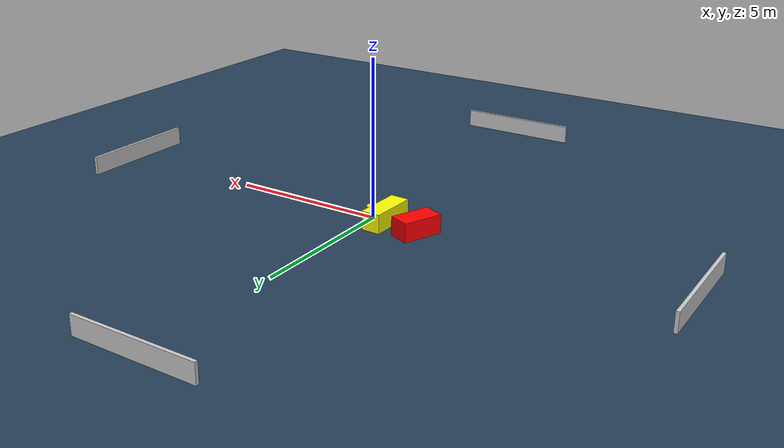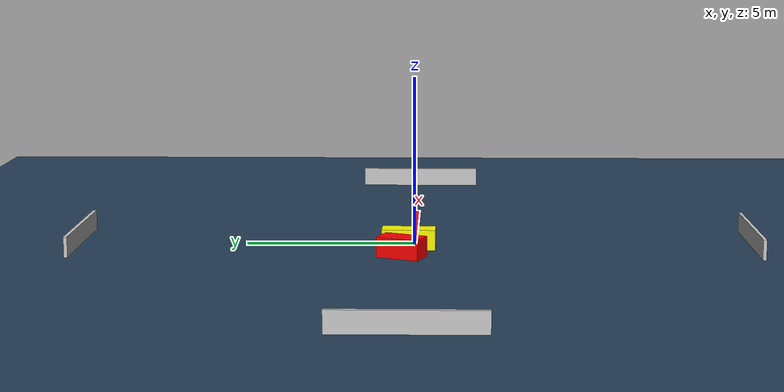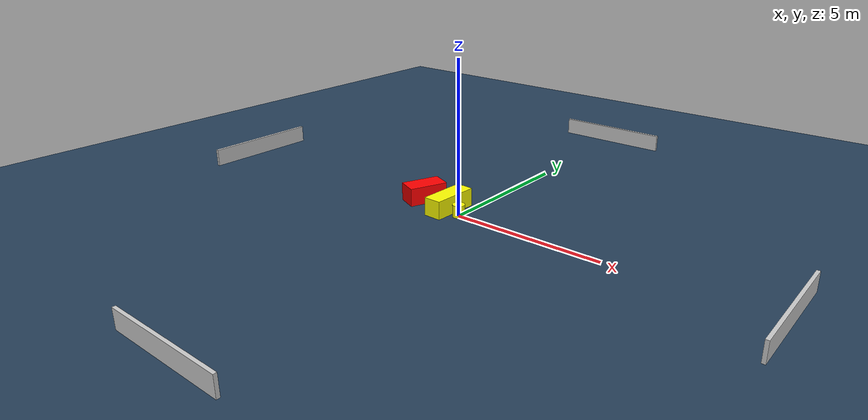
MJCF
<?xml version="1.0" ?>
<mujoco model="generated_environment">
  <option timestep="0.01" integrator="RK4" cone="elliptic"/>
  <default>
    <geom density="1"/>
  </default>
  <asset>
    <texture builtin="gradient" height="3072" name="skybox" rgb1="0.3 0.5 0.7" rgb2="0 0 0" type="skybox" width="512"/>
    <texture builtin="checker" height="300" name="groundplane" rgb1="0.2 0.3 0.4" rgb2="0.1 0.2 0.3" type="2d" width="300"/>
    <material name="groundplane" reflectance="0.2" texrepeat="5 5" texture="groundplane"/>
  </asset>
  <worldbody>
    <light dir="0 0 -1" directional="true" pos="0 0 1.5"/>
    <geom condim="3" friction="0.5 0.005 0.001" material="groundplane" name="floor" pos="0 0 0" size="0 0 0.05" type="plane"/>
    <body name="walls">
      <geom name="wall_1" condim="4" pos="-10.0 0.0 0.3" rgba="0.800000011920929 0.800000011920929 0.800000011920929 1.0" size="0.05 2.0 0.3" type="box"/>
      <geom name="wall_2" condim="4" pos="10.0 0.0 0.3" rgba="0.800000011920929 0.800000011920929 0.800000011920929 1.0" size="0.05 2.0 0.3" type="box"/>
      <geom name="wall_3" condim="4" pos="0.0 -10.0 0.3" rgba="0.800000011920929 0.800000011920929 0.800000011920929 1.0" size="2.0 0.05 0.3" type="box"/>
      <geom name="wall_4" condim="4" pos="0.0 10.0 0.3" rgba="0.800000011920929 0.800000011920929 0.800000011920929 1.0" size="2.0 0.05 0.3" type="box"/>
    </body>
    <body name="robot">
      <joint name="joint_x" type="slide" pos="0 0 0" axis="1 0 0"/>
      <joint name="joint_y" type="slide" pos="0 0 0" axis="0 1 0"/>
      <geom name="robot" type="cylinder" pos="0.0 0.0 0.2" size="0.2 0.2 0.0" mass="5.0" friction="1.0 0.005 0.0001" condim="4" rgba="1.0 1.0 0.0 1.0"/>
    </body>
    <body name="obstacle_1_movable">
      <geom name="obstacle_1_movable" condim="4" pos="-0.5491875447419177 0.1726576359810082 0.3" euler="0 0 178.00190256120715" friction="0.0 0.005 0.001" rgba="1.0 1.0 0.0 1.0" size="0.30213179538461044 0.785103064800255 0.3" type="box" mass="0.1"/>
      <joint type="free"/>
    </body>
    <body name="obstacle_2_static">
      <geom name="obstacle_2_static" condim="4" pos="-1.742497655036616 0.35415413032093157 0.3" euler="0 0 337.55876163140175" friction="0.0 0.005 0.001" rgba="1.0 0.0 0.0 1.0" size="0.3474066954899818 0.6461818839857209 0.3" type="box"/>
    </body>
  </worldbody>
  <actuator>
    <motor name="actuator_x" joint="joint_x" gear="1" ctrlrange="-1 1"/>
    <motor name="actuator_y" joint="joint_y" gear="1" ctrlrange="-1 1"/>
  </actuator>
</mujoco>
